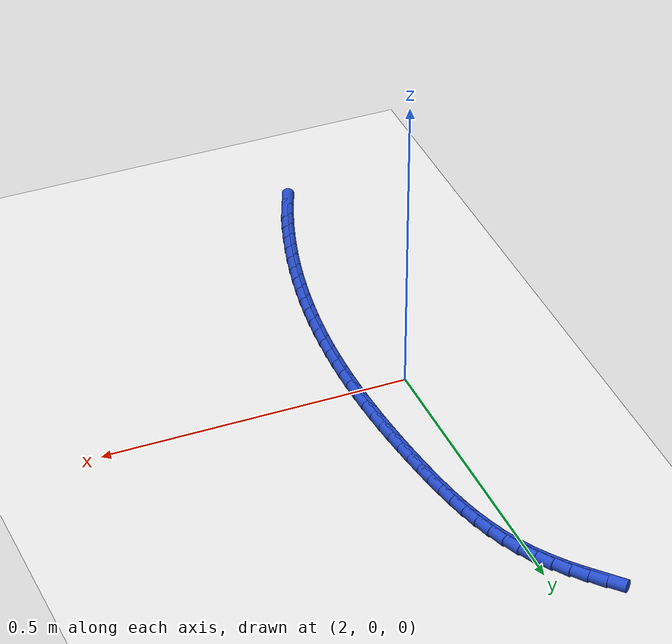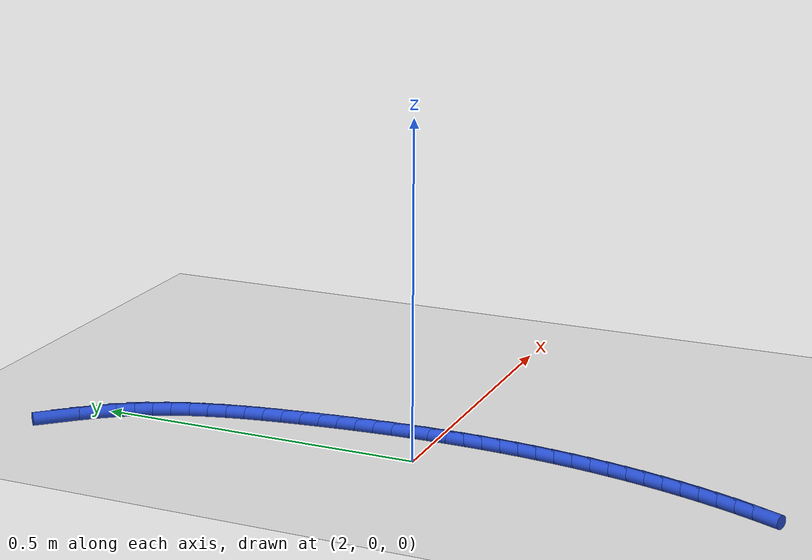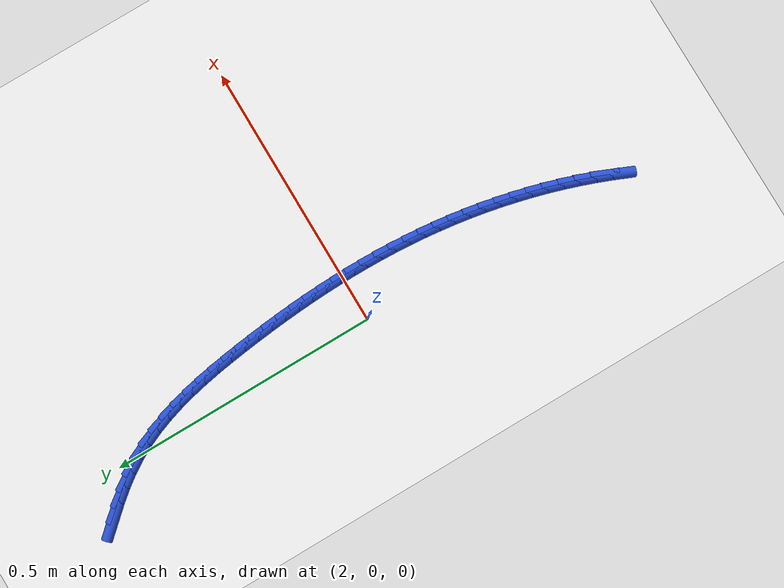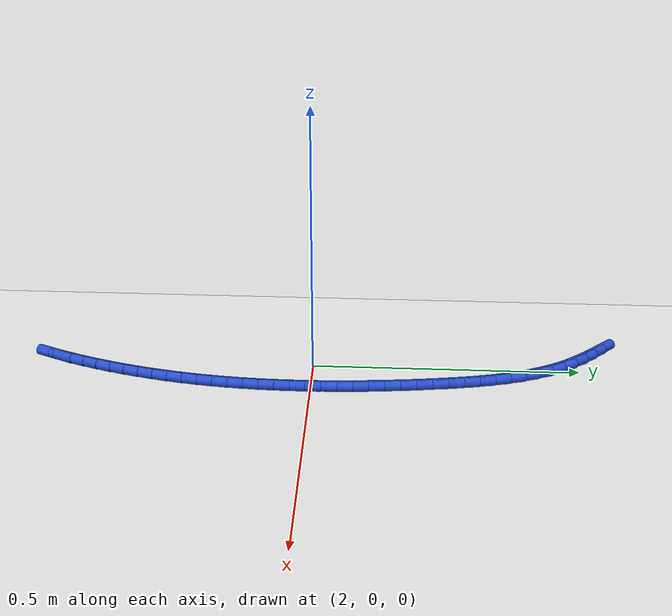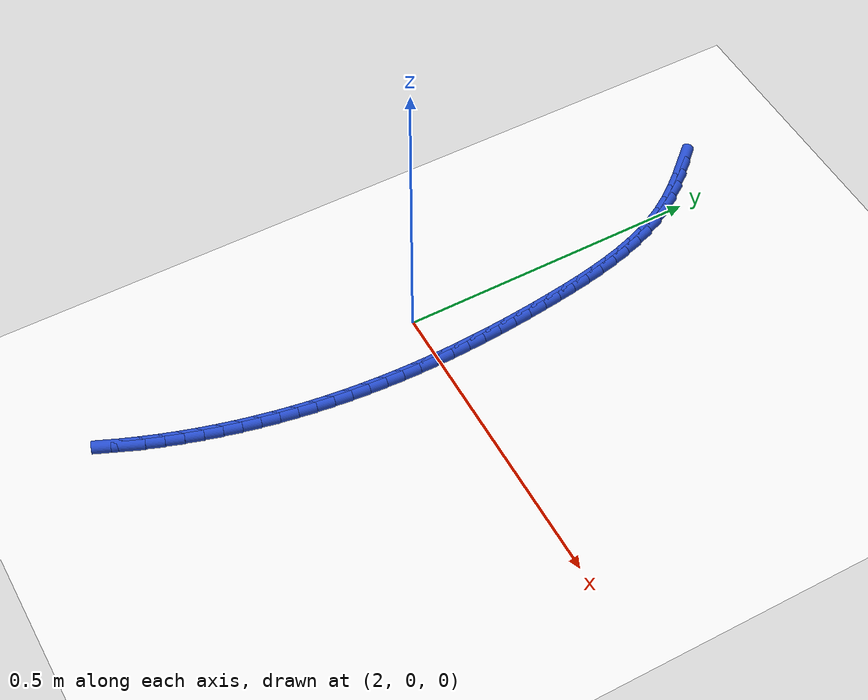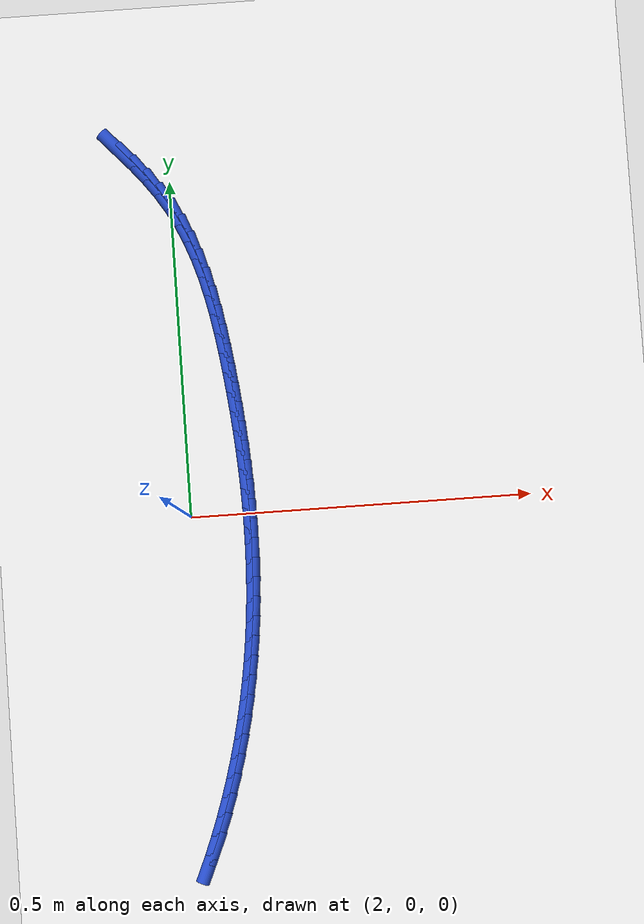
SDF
<sdf version="1.6">
 <world name="default">
  <model name="ground_plane">
   <static>1</static>
   <link name="link">
    <collision name="collision">
     <geometry><plane><normal>0 0 1</normal><size>100 100</size></plane></geometry>
     <surface><friction><ode><mu>100</mu><mu2>50</mu2></ode></friction></surface>
    </collision>
    <visual name="visual">
     <cast_shadows>0</cast_shadows>
     <geometry><plane><normal>0 0 1</normal><size>100 100</size></plane></geometry>
     <material>
      <script><uri>file://media/materials/scripts/gazebo.material</uri><name>Gazebo/WhiteGlow</name></script>
     </material>
    </visual>
   </link>
  </model>
  <model name="line">
   <link name="link_94">
    <pose>1.9312518036194215 0.5480938163055085 0.01 0 1.57 -0.8358164485819326</pose>
    <collision name="collision">
     <geometry><cylinder><radius>0.01</radius><length>0.08</length></cylinder></geometry>
    </collision>
    <visual name="visual">
     <material>
      <script><name>Gazebo/Blue</name><uri>file://media/materials/scripts/gazebo.material</uri></script>
     </material>
     <geometry><cylinder><radius>0.01</radius><length>0.08</length></cylinder></geometry>
    </visual>
   </link>
   <link name="link_95">
    <pose>1.9504029280144561 0.5269072075482374 0.01 0 1.57 -0.8807469622115814</pose>
    <collision name="collision">
     <geometry><cylinder><radius>0.01</radius><length>0.08</length></cylinder></geometry>
    </collision>
    <visual name="visual">
     <material>
      <script><name>Gazebo/Blue</name><uri>file://media/materials/scripts/gazebo.material</uri></script>
     </material>
     <geometry><cylinder><radius>0.01</radius><length>0.08</length></cylinder></geometry>
    </visual>
   </link>
   <link name="link_96">
    <pose>1.9684280110363743 0.5050697154968125 0.01 0 1.57 -0.9371822792037505</pose>
    <collision name="collision">
     <geometry><cylinder><radius>0.01</radius><length>0.08</length></cylinder></geometry>
    </collision>
    <visual name="visual">
     <material>
      <script><name>Gazebo/Blue</name><uri>file://media/materials/scripts/gazebo.material</uri></script>
     </material>
     <geometry><cylinder><radius>0.01</radius><length>0.08</length></cylinder></geometry>
    </visual>
   </link>
   <link name="link_97">
    <pose>1.9850701496900482 0.48241701551429716 0.01 0 1.57 -1.0051642483368743</pose>
    <collision name="collision">
     <geometry><cylinder><radius>0.01</radius><length>0.08</length></cylinder></geometry>
    </collision>
    <visual name="visual">
     <material>
      <script><name>Gazebo/Blue</name><uri>file://media/materials/scripts/gazebo.material</uri></script>
     </material>
     <geometry><cylinder><radius>0.01</radius><length>0.08</length></cylinder></geometry>
    </visual>
   </link>
   <link name="link_98">
    <pose>2.0000724409803503 0.4587847829637534 0.01 0 1.57 -1.0816910537746167</pose>
    <collision name="collision">
     <geometry><cylinder><radius>0.01</radius><length>0.08</length></cylinder></geometry>
    </collision>
    <visual name="visual">
     <material>
      <script><name>Gazebo/Blue</name><uri>file://media/materials/scripts/gazebo.material</uri></script>
     </material>
     <geometry><cylinder><radius>0.01</radius><length>0.08</length></cylinder></geometry>
    </visual>
   </link>
   <link name="link_99">
    <pose>2.0132370664256545 0.43405037759847387 0.01 0 1.57 -1.1537129911160757</pose>
    <collision name="collision">
     <geometry><cylinder><radius>0.01</radius><length>0.08</length></cylinder></geometry>
    </collision>
    <visual name="visual">
     <material>
      <script><name>Gazebo/Blue</name><uri>file://media/materials/scripts/gazebo.material</uri></script>
     </material>
     <geometry><cylinder><radius>0.01</radius><length>0.08</length></cylinder></geometry>
    </visual>
   </link>
   <link name="link_100">
    <pose>2.024650253640056 0.408291554970852 0.01 0 1.57 -1.2172599769125358</pose>
    <collision name="collision">
     <geometry><cylinder><radius>0.01</radius><length>0.08</length></cylinder></geometry>
    </collision>
    <visual name="visual">
     <material>
      <script><name>Gazebo/Blue</name><uri>file://media/materials/scripts/gazebo.material</uri></script>
     </material>
     <geometry><cylinder><radius>0.01</radius><length>0.08</length></cylinder></geometry>
    </visual>
   </link>
   <link name="link_101">
    <pose>2.0344834825247218 0.3816462165055516 0.01 0 1.57 -1.27243540022116</pose>
    <collision name="collision">
     <geometry><cylinder><radius>0.01</radius><length>0.08</length></cylinder></geometry>
    </collision>
    <visual name="visual">
     <material>
      <script><name>Gazebo/Blue</name><uri>file://media/materials/scripts/gazebo.material</uri></script>
     </material>
     <geometry><cylinder><radius>0.01</radius><length>0.08</length></cylinder></geometry>
    </visual>
   </link>
   <link name="link_102">
    <pose>2.042908249314237 0.35425227515053914 0.01 0 1.57 -1.3195548864935764</pose>
    <collision name="collision">
     <geometry><cylinder><radius>0.01</radius><length>0.08</length></cylinder></geometry>
    </collision>
    <visual name="visual">
     <material>
      <script><name>Gazebo/Blue</name><uri>file://media/materials/scripts/gazebo.material</uri></script>
     </material>
     <geometry><cylinder><radius>0.01</radius><length>0.08</length></cylinder></geometry>
    </visual>
   </link>
   <link name="link_103">
    <pose>2.050096050243191 0.32624764385378097 0.01 0 1.57 -1.3590306213135246</pose>
    <collision name="collision">
     <geometry><cylinder><radius>0.01</radius><length>0.08</length></cylinder></geometry>
    </collision>
    <visual name="visual">
     <material>
      <script><name>Gazebo/Blue</name><uri>file://media/materials/scripts/gazebo.material</uri></script>
     </material>
     <geometry><cylinder><radius>0.01</radius><length>0.08</length></cylinder></geometry>
    </visual>
   </link>
   <link name="link_104">
    <pose>2.056218381546169 0.2977702355632437 0.01 0 1.57 -1.3912867808558687</pose>
    <collision name="collision">
     <geometry><cylinder><radius>0.01</radius><length>0.08</length></cylinder></geometry>
    </collision>
    <visual name="visual">
     <material>
      <script><name>Gazebo/Blue</name><uri>file://media/materials/scripts/gazebo.material</uri></script>
     </material>
     <geometry><cylinder><radius>0.01</radius><length>0.08</length></cylinder></geometry>
    </visual>
   </link>
   <link name="link_105">
    <pose>2.0614467394577596 0.2689579632268933 0.01 0 1.57 -1.416701888857089</pose>
    <collision name="collision">
     <geometry><cylinder><radius>0.01</radius><length>0.08</length></cylinder></geometry>
    </collision>
    <visual name="visual">
     <material>
      <script><name>Gazebo/Blue</name><uri>file://media/materials/scripts/gazebo.material</uri></script>
     </material>
     <geometry><cylinder><radius>0.01</radius><length>0.08</length></cylinder></geometry>
    </visual>
   </link>
   <link name="link_106">
    <pose>2.065952620212549 0.2399487397926968 0.01 0 1.57 -1.4355710361660818</pose>
    <collision name="collision">
     <geometry><cylinder><radius>0.01</radius><length>0.08</length></cylinder></geometry>
    </collision>
    <visual name="visual">
     <material>
      <script><name>Gazebo/Blue</name><uri>file://media/materials/scripts/gazebo.material</uri></script>
     </material>
     <geometry><cylinder><radius>0.01</radius><length>0.08</length></cylinder></geometry>
    </visual>
   </link>
   <link name="link_107">
    <pose>2.069907520045125 0.2108804782086203 0.01 0 1.57 -1.449107897019221</pose>
    <collision name="collision">
     <geometry><cylinder><radius>0.01</radius><length>0.08</length></cylinder></geometry>
    </collision>
    <visual name="visual">
     <material>
      <script><name>Gazebo/Blue</name><uri>file://media/materials/scripts/gazebo.material</uri></script>
     </material>
     <geometry><cylinder><radius>0.01</radius><length>0.08</length></cylinder></geometry>
    </visual>
   </link>
   <link name="link_108">
    <pose>2.0734552259127903 0.18187051400207155 0.01 0 1.57 -1.462104041685704</pose>
    <collision name="collision">
     <geometry><cylinder><radius>0.01</radius><length>0.08</length></cylinder></geometry>
    </collision>
    <visual name="visual">
     <material>
      <script><name>Gazebo/Blue</name><uri>file://media/materials/scripts/gazebo.material</uri></script>
     </material>
     <geometry><cylinder><radius>0.01</radius><length>0.08</length></cylinder></geometry>
    </visual>
   </link>
   <link name="link_109">
    <pose>2.076612027737715 0.15294150104979765 0.01 0 1.57 -1.475924580381411</pose>
    <collision name="collision">
     <geometry><cylinder><radius>0.01</radius><length>0.08</length></cylinder></geometry>
    </collision>
    <visual name="visual">
     <material>
      <script><name>Gazebo/Blue</name><uri>file://media/materials/scripts/gazebo.material</uri></script>
     </material>
     <geometry><cylinder><radius>0.01</radius><length>0.08</length></cylinder></geometry>
    </visual>
   </link>
   <link name="link_110">
    <pose>2.0793575685814716 0.12408887859371716 0.01 0 1.57 -1.4905708391112795</pose>
    <collision name="collision">
     <geometry><cylinder><radius>0.01</radius><length>0.08</length></cylinder></geometry>
    </collision>
    <visual name="visual">
     <material>
      <script><name>Gazebo/Blue</name><uri>file://media/materials/scripts/gazebo.material</uri></script>
     </material>
     <geometry><cylinder><radius>0.01</radius><length>0.08</length></cylinder></geometry>
    </visual>
   </link>
   <link name="link_111">
    <pose>2.0816714882659664 0.09530808346991246 0.01 0 1.57 -1.5060416594066137</pose>
    <collision name="collision">
     <geometry><cylinder><radius>0.01</radius><length>0.08</length></cylinder></geometry>
    </collision>
    <visual name="visual">
     <material>
      <script><name>Gazebo/Blue</name><uri>file://media/materials/scripts/gazebo.material</uri></script>
     </material>
     <geometry><cylinder><radius>0.01</radius><length>0.08</length></cylinder></geometry>
    </visual>
   </link>
   <link name="link_112">
    <pose>2.0835334266131063 0.06659455251446439 0.01 0 1.57 -1.5223332016381486</pose>
    <collision name="collision">
     <geometry><cylinder><radius>0.01</radius><length>0.08</length></cylinder></geometry>
    </collision>
    <visual name="visual">
     <material>
      <script><name>Gazebo/Blue</name><uri>file://media/materials/scripts/gazebo.material</uri></script>
     </material>
     <geometry><cylinder><radius>0.01</radius><length>0.08</length></cylinder></geometry>
    </visual>
   </link>
   <link name="link_113">
    <pose>2.084923023444795 0.03794372256345521 0.01 0 1.57 -1.5394386238748006</pose>
    <collision name="collision">
     <geometry><cylinder><radius>0.01</radius><length>0.08</length></cylinder></geometry>
    </collision>
    <visual name="visual">
     <material>
      <script><name>Gazebo/Blue</name><uri>file://media/materials/scripts/gazebo.material</uri></script>
     </material>
     <geometry><cylinder><radius>0.01</radius><length>0.08</length></cylinder></geometry>
    </visual>
   </link>
   <link name="link_114">
    <pose>2.085819918582938 0.009351030452965784 0.01 0 1.57 -1.5573477635521107</pose>
    <collision name="collision">
     <geometry><cylinder><radius>0.01</radius><length>0.08</length></cylinder></geometry>
    </collision>
    <visual name="visual">
     <material>
      <script><name>Gazebo/Blue</name><uri>file://media/materials/scripts/gazebo.material</uri></script>
     </material>
     <geometry><cylinder><radius>0.01</radius><length>0.08</length></cylinder></geometry>
    </visual>
   </link>
   <link name="link_115">
    <pose>2.086203751849441 -0.019188086980921566 0.01 0 1.57 1.5655458230223807</pose>
    <collision name="collision">
     <geometry><cylinder><radius>0.01</radius><length>0.08</length></cylinder></geometry>
    </collision>
    <visual name="visual">
     <material>
      <script><name>Gazebo/Blue</name><uri>file://media/materials/scripts/gazebo.material</uri></script>
     </material>
     <geometry><cylinder><radius>0.01</radius><length>0.08</length></cylinder></geometry>
    </visual>
   </link>
   <link name="link_116">
    <pose>2.0860541630662093 -0.04767819290212564 0.01 0 1.57 1.5460745318772404</pose>
    <collision name="collision">
     <geometry><cylinder><radius>0.01</radius><length>0.08</length></cylinder></geometry>
    </collision>
    <visual name="visual">
     <material>
      <script><name>Gazebo/Blue</name><uri>file://media/materials/scripts/gazebo.material</uri></script>
     </material>
     <geometry><cylinder><radius>0.01</radius><length>0.08</length></cylinder></geometry>
    </visual>
   </link>
   <link name="link_117">
    <pose>2.0853507920551495 -0.07612385047456563 0.01 0 1.57 1.5258528861289353</pose>
    <collision name="collision">
     <geometry><cylinder><radius>0.01</radius><length>0.08</length></cylinder></geometry>
    </collision>
    <visual name="visual">
     <material>
      <script><name>Gazebo/Blue</name><uri>file://media/materials/scripts/gazebo.material</uri></script>
     </material>
     <geometry><cylinder><radius>0.01</radius><length>0.08</length></cylinder></geometry>
    </visual>
   </link>
   <link name="link_118">
    <pose>2.084073278638166 -0.10452962286215842 0.01 0 1.57 1.504907130665591</pose>
    <collision name="collision">
     <geometry><cylinder><radius>0.01</radius><length>0.08</length></cylinder></geometry>
    </collision>
    <visual name="visual">
     <material>
      <script><name>Gazebo/Blue</name><uri>file://media/materials/scripts/gazebo.material</uri></script>
     </material>
     <geometry><cylinder><radius>0.01</radius><length>0.08</length></cylinder></geometry>
    </visual>
   </link>
   <link name="link_119">
    <pose>2.082201262637164 -0.13290007322882322 0.01 0 1.57 1.483268038422572</pose>
    <collision name="collision">
     <geometry><cylinder><radius>0.01</radius><length>0.08</length></cylinder></geometry>
    </collision>
    <visual name="visual">
     <material>
      <script><name>Gazebo/Blue</name><uri>file://media/materials/scripts/gazebo.material</uri></script>
     </material>
     <geometry><cylinder><radius>0.01</radius><length>0.08</length></cylinder></geometry>
    </visual>
   </link>
   <link name="link_120">
    <pose>2.0797143838740495 -0.16123976473847845 0.01 0 1.57 1.4610141096062468</pose>
    <collision name="collision">
     <geometry><cylinder><radius>0.01</radius><length>0.08</length></cylinder></geometry>
    </collision>
    <visual name="visual">
     <material>
      <script><name>Gazebo/Blue</name><uri>file://media/materials/scripts/gazebo.material</uri></script>
     </material>
     <geometry><cylinder><radius>0.01</radius><length>0.08</length></cylinder></geometry>
    </visual>
   </link>
   <link name="link_121">
    <pose>2.0765937608142515 -0.18955105532065253 0.01 0 1.57 1.4384166745265017</pose>
    <collision name="collision">
     <geometry><cylinder><radius>0.01</radius><length>0.08</length></cylinder></geometry>
    </collision>
    <visual name="visual">
     <material>
      <script><name>Gazebo/Blue</name><uri>file://media/materials/scripts/gazebo.material</uri></script>
     </material>
     <geometry><cylinder><radius>0.01</radius><length>0.08</length></cylinder></geometry>
    </visual>
   </link>
   <link name="link_122">
    <pose>2.0728290350781307 -0.21782359155554704 0.01 0 1.57 1.4155595622893304</pose>
    <collision name="collision">
     <geometry><cylinder><radius>0.01</radius><length>0.08</length></cylinder></geometry>
    </collision>
    <visual name="visual">
     <material>
      <script><name>Gazebo/Blue</name><uri>file://media/materials/scripts/gazebo.material</uri></script>
     </material>
     <geometry><cylinder><radius>0.01</radius><length>0.08</length></cylinder></geometry>
    </visual>
   </link>
   <link name="link_123">
    <pose>2.0684128957362624 -0.24604247508612156 0.01 0 1.57 1.3924349712089208</pose>
    <collision name="collision">
     <geometry><cylinder><radius>0.01</radius><length>0.08</length></cylinder></geometry>
    </collision>
    <visual name="visual">
     <material>
      <script><name>Gazebo/Blue</name><uri>file://media/materials/scripts/gazebo.material</uri></script>
     </material>
     <geometry><cylinder><radius>0.01</radius><length>0.08</length></cylinder></geometry>
    </visual>
   </link>
   <link name="link_124">
    <pose>2.0633380356917144 -0.274192801839598 0.01 0 1.57 1.369036102766767</pose>
    <collision name="collision">
     <geometry><cylinder><radius>0.01</radius><length>0.08</length></cylinder></geometry>
    </collision>
    <visual name="visual">
     <material>
      <script><name>Gazebo/Blue</name><uri>file://media/materials/scripts/gazebo.material</uri></script>
     </material>
     <geometry><cylinder><radius>0.01</radius><length>0.08</length></cylinder></geometry>
    </visual>
   </link>
   <link name="link_125">
    <pose>2.0575971478475528 -0.3022596677431974 0.01 0 1.57 1.3453573582357516</pose>
    <collision name="collision">
     <geometry><cylinder><radius>0.01</radius><length>0.08</length></cylinder></geometry>
    </collision>
    <visual name="visual">
     <material>
      <script><name>Gazebo/Blue</name><uri>file://media/materials/scripts/gazebo.material</uri></script>
     </material>
     <geometry><cylinder><radius>0.01</radius><length>0.08</length></cylinder></geometry>
    </visual>
   </link>
   <link name="link_126">
    <pose>2.0511829251068447 -0.3302281687241416 0.01 0 1.57 1.3213944258820864</pose>
    <collision name="collision">
     <geometry><cylinder><radius>0.01</radius><length>0.08</length></cylinder></geometry>
    </collision>
    <visual name="visual">
     <material>
      <script><name>Gazebo/Blue</name><uri>file://media/materials/scripts/gazebo.material</uri></script>
     </material>
     <geometry><cylinder><radius>0.01</radius><length>0.08</length></cylinder></geometry>
    </visual>
   </link>
   <link name="link_127">
    <pose>2.0440880603726574 -0.35808340070965045 0.01 0 1.57 1.2971443692991746</pose>
    <collision name="collision">
     <geometry><cylinder><radius>0.01</radius><length>0.08</length></cylinder></geometry>
    </collision>
    <visual name="visual">
     <material>
      <script><name>Gazebo/Blue</name><uri>file://media/materials/scripts/gazebo.material</uri></script>
     </material>
     <geometry><cylinder><radius>0.01</radius><length>0.08</length></cylinder></geometry>
    </visual>
   </link>
   <link name="link_128">
    <pose>2.036305246548058 -0.3858104596269456 0.01 0 1.57 1.2726057154622625</pose>
    <collision name="collision">
     <geometry><cylinder><radius>0.01</radius><length>0.08</length></cylinder></geometry>
    </collision>
    <visual name="visual">
     <material>
      <script><name>Gazebo/Blue</name><uri>file://media/materials/scripts/gazebo.material</uri></script>
     </material>
     <geometry><cylinder><radius>0.01</radius><length>0.08</length></cylinder></geometry>
    </visual>
   </link>
   <link name="link_129">
    <pose>2.0278271765361136 -0.4133944414032483 0.01 0 1.57 1.2477785408884308</pose>
    <collision name="collision">
     <geometry><cylinder><radius>0.01</radius><length>0.08</length></cylinder></geometry>
    </collision>
    <visual name="visual">
     <material>
      <script><name>Gazebo/Blue</name><uri>file://media/materials/scripts/gazebo.material</uri></script>
     </material>
     <geometry><cylinder><radius>0.01</radius><length>0.08</length></cylinder></geometry>
    </visual>
   </link>
   <link name="link_130">
    <pose>2.018646543239891 -0.4408204419657797 0.01 0 1.57 1.2226389651228897</pose>
    <collision name="collision">
     <geometry><cylinder><radius>0.01</radius><length>0.08</length></cylinder></geometry>
    </collision>
    <visual name="visual">
     <material>
      <script><name>Gazebo/Blue</name><uri>file://media/materials/scripts/gazebo.material</uri></script>
     </material>
     <geometry><cylinder><radius>0.01</radius><length>0.08</length></cylinder></geometry>
    </visual>
   </link>
   <link name="link_131">
    <pose>2.008755580819616 -0.4680726466483688 0.01 0 1.57 1.1962384618793445</pose>
    <collision name="collision">
     <geometry><cylinder><radius>0.01</radius><length>0.08</length></cylinder></geometry>
    </collision>
    <visual name="visual">
     <material>
      <script><name>Gazebo/Blue</name><uri>file://media/materials/scripts/gazebo.material</uri></script>
     </material>
     <geometry><cylinder><radius>0.01</radius><length>0.08</length></cylinder></geometry>
    </visual>
   </link>
   <link name="link_132">
    <pose>1.9981298511870804 -0.49510214677672765 0.01 0 1.57 1.1672919885732116</pose>
    <collision name="collision">
     <geometry><cylinder><radius>0.01</radius><length>0.08</length></cylinder></geometry>
    </collision>
    <visual name="visual">
     <material>
      <script><name>Gazebo/Blue</name><uri>file://media/materials/scripts/gazebo.material</uri></script>
     </material>
     <geometry><cylinder><radius>0.01</radius><length>0.08</length></cylinder></geometry>
    </visual>
   </link>
  </model>
 </world>
</sdf>
